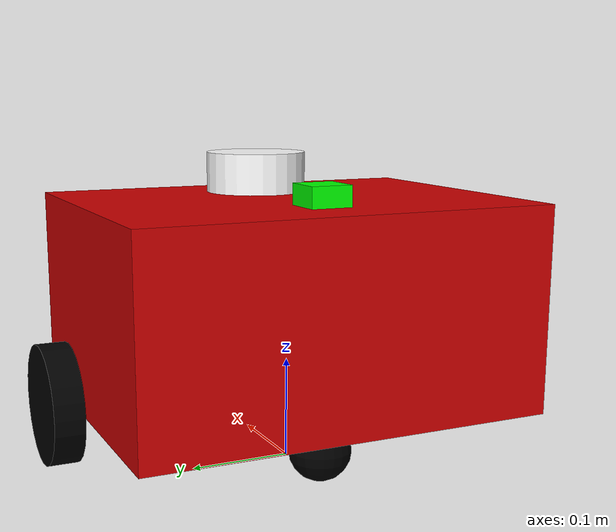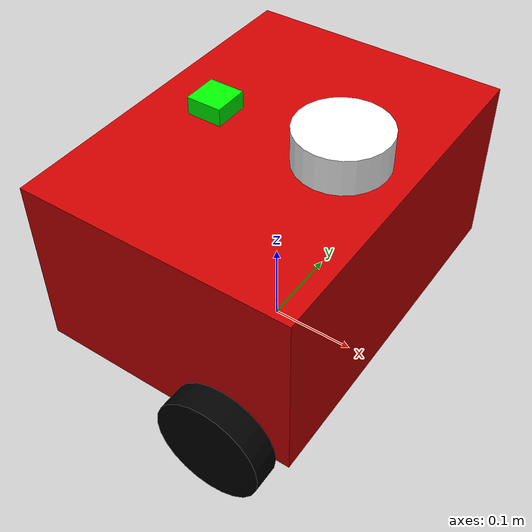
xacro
<?xml version="1.0"?>
<robot name="marrtino" xmlns:xacro="http://ros.org/wiki/xacro">

  <xacro:arg name="namespace" default="" />

  <xacro:property name="base_w" value="0.40" />
  <xacro:property name="base_l" value="0.30" />
  <xacro:property name="base_h" value="0.20" />

  <xacro:property name="wheel_r" value="0.06" />
  <xacro:property name="wheel_l" value="0.03" />

  <xacro:property name="friction" value="0.01" />
  <xacro:property name="damping" value="0.05" />
  <xacro:property name="max_effort" value="1000.0" />
  <xacro:property name="max_velocity" value="10.0" />

  <xacro:include filename="$(find marrtino_gazebo)/urdf/inertia.xacro" />

  <material name="orange"><color rgba="1.0 0.33 0.0 1.0"/></material>
  <material name="red"><color rgba="0.8 0 0 1"/></material>
  <material name="green"><color rgba="0 1 0 1"/></material>
  <material name="blue"><color rgba="0 0 1 1"/></material>
  <material name="black"><color rgba="0 0 0 1.0"/></material>
  <material name="grey"><color rgba="0.7 0.7 0.7 1.0"/></material>
  <material name="white"><color rgba="1 1 1 1.0"/></material>

  <link name="base_footprint"/>

  <link name="base_link">
    <visual>
        <geometry>
            <box size="${base_l} ${base_w} ${base_h}"/>
        </geometry>
        <origin xyz="0.0 0.0 0.0" rpy="0.0 0.0 0.0"/>
        <material name="red"/>
    </visual>
    <collision>
        <geometry>
            <box size="${base_l} ${base_w} ${base_h}"/>
        </geometry>
        <origin xyz="0.0 0.0 0.0" rpy="0.0 0.0 0.0"/>
    </collision>
    <xacro:box_inertial mass="0.5" x_dim="${base_l}" y_dim="${base_w}" z_dim="${base_h}"/>
  </link>

  <link name="left_wheel">
    <visual>
        <geometry>
            <cylinder radius="${wheel_r}" length="${wheel_l}"/>
        </geometry>
        <origin xyz="0.0 0.0 0.0" rpy="1.57 0.0 0.0"/>
        <material name="black"/>
    </visual>
    <collision>
        <geometry>
            <cylinder radius="${wheel_r}" length="${wheel_l}"/>
        </geometry>
        <origin xyz="0.0 0.0 0.0" rpy="1.57 0.0 0.0"/>
    </collision>
    <xacro:cylinder_inertial mass="0.3" radius="${wheel_r}" length="${wheel_l}"/>
  </link>

  <link name="right_wheel">
    <visual>
        <geometry>
            <cylinder radius="${wheel_r}" length="${wheel_l}"/>
        </geometry>
        <origin xyz="0.0 0.0 0.0" rpy="1.57 0.0 0.0"/>
        <material name="black"/>
    </visual>
    <collision>
        <geometry>
            <cylinder radius="${wheel_r}" length="${wheel_l}"/>
        </geometry>
        <origin xyz="0.0 0.0 0.0" rpy="1.57 0.0 0.0"/>
    </collision>
    <xacro:cylinder_inertial mass="0.3" radius="${wheel_r}" length="${wheel_l}"/>
  </link>

  <link name="caster_wheel">
    <visual>
        <geometry>
            <sphere radius="${wheel_r/2}"/>
        </geometry>
        <origin xyz="0.0 0.0 0.0" rpy="0.0 0.0 0.0"/>
        <material name="black"/>
    </visual>
    <collision>
        <geometry>
            <sphere radius="${wheel_r/2}"/>
        </geometry>
        <origin xyz="0.0 0.0 0.0" rpy="0.0 0.0 0.0"/>
    </collision>
    <xacro:sphere_inertial mass="0.1" radius="${wheel_r/2}" />
  </link>

  <link name="imu_link">
    <visual>
      <origin rpy="0 0 0" xyz="0 0 0.0"/>
      <geometry>
        <box size="0.04 0.04 0.02"/>
      </geometry>
      <material name="green"/>
    </visual>
  </link>

  <link name="lidar_link">
    <visual>
        <geometry>
            <cylinder radius="0.05" length="0.04"/>
        </geometry>
        <origin xyz="0.0 0.0 0.0" rpy="0.0 0.0 0.0"/>
        <material name="white"/>
    </visual>
  </link>

  <joint name="base_joint" type="fixed">
    <parent link="base_footprint"/>
    <child link="base_link"/>
    <origin xyz="0.0 0.0 ${base_h/2+wheel_r}" rpy="0.0 0.0 0.0"/>
  </joint>

  <joint name="left_wheel_joint" type="continuous">
    <parent link="base_link"/>
    <child link="left_wheel"/>
    <origin xyz="${base_l/4} ${base_w/2+wheel_l/2} ${-base_h/2}" rpy="0 0.0 0.0"/>
    <axis xyz="0.0 1.0 0.0"/>
    <dynamics damping="${damping}" friction="${friction}"/>
    <limit effort="${max_effort}" velocity="${max_velocity}"/>
  </joint>

  <joint name="right_wheel_joint" type="continuous">
    <parent link="base_link"/>
    <child link="right_wheel"/>
    <origin xyz="${base_l/4} ${-base_w/2-wheel_l/2} ${-base_h/2}" rpy="0 0.0 0.0"/>
    <axis xyz="0.0 1.0 0.0"/>
    <dynamics damping="${damping}" friction="${friction}"/>
    <limit effort="${max_effort}" velocity="${max_velocity}"/>
  </joint>

  <joint name="caster_wheel_joint" type="fixed">
    <parent link="base_link"/>
    <child link="caster_wheel"/>
    <origin xyz="${-base_l/4} 0.0 ${-base_h/2-wheel_r/2}" rpy="0.0 0.0 0.0"/>
  </joint>

  <joint name="imu_joint" type="fixed">
    <parent link="base_link"/>
    <child link="imu_link"/>
    <origin xyz="${-base_l/4} 0.0 ${base_h/2+0.01}" rpy="0.0 0.0 0.0"/>
  </joint>

  <joint name="base_lidar_joint" type="fixed">
    <parent link="base_link"/>
    <child link="lidar_link"/>
    <origin xyz="${base_l/4} 0.0 ${base_h/2+0.02}" rpy="0.0 0.0 0.0"/>
  </joint>

  <ros2_control name="GazeboSimSystem" type="system">
    <hardware>
      <plugin>gz_ros2_control/GazeboSimSystem</plugin>
    </hardware>
    <joint name="left_wheel_joint">
      <command_interface name="velocity">
        <param name="min">-1</param>
        <param name="max">1</param>
      </command_interface>
      <state_interface name="position"/>
      <state_interface name="velocity"/>
    </joint>
    <joint name="right_wheel_joint">
      <command_interface name="velocity">
        <param name="min">-1</param>
        <param name="max">1</param>
      </command_interface>
      <state_interface name="position"/>
      <state_interface name="velocity"/>
    </joint>
  </ros2_control>

  <gazebo>
    <!-- Joint state publisher -->
    <plugin filename="gz_ros2_control-system" name="gz_ros2_control::GazeboSimROS2ControlPlugin">
      <ros>
        <namespace>$(arg namespace)</namespace>
      </ros>
      <parameters>$(find gz_ros2_control_demos)/config/diff_drive_controller.yaml</parameters>
    </plugin>
  </gazebo>

</robot>

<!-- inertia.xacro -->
<robot xmlns:xacro="http://ros.org/wiki/xacro">

  <xacro:macro name="sphere_inertial" params="mass radius">
    <inertial>
      <origin xyz="0 0 0" rpy="0 0 0"/> <mass value="${mass}"/>
      <inertia
        ixx="${(2/5) * mass * (radius*radius)}"
        ixy="0.0"
        ixz="0.0"
        iyy="${(2/5) * mass * (radius*radius)}"
        iyz="0.0"
        izz="${(2/5) * mass * (radius*radius)}"
      />
    </inertial>
  </xacro:macro>

  <xacro:macro name="sphere_inertial_roll" params="mass radius roll">
    <inertial>
      <origin xyz="0 0 0" rpy="${roll} 0 0"/> <mass value="${mass}"/>
      <inertia
        ixx="${(2/5) * mass * (radius*radius)}"
        ixy="0.0"
        ixz="0.0"
        iyy="${(2/5) * mass * (radius*radius)}"
        iyz="0.0"
        izz="${(2/5) * mass * (radius*radius)}"
      />
    </inertial>
  </xacro:macro>

  <xacro:macro name="cylinder_inertial" params="mass radius length">
    <inertial>
      <origin xyz="0 0 0" rpy="0 0 0"/>
      <mass value="${mass}"/>
      <inertia
        ixx="${(1/12) * mass * (3*radius*radius + length*length)}"
        ixy="0.0"
        ixz="0.0"
        iyy="${(1/12) * mass * (3*radius*radius + length*length)}"
        iyz="0.0"
        izz="${(1/2) * mass * (radius*radius)}"
      />
    </inertial>
  </xacro:macro>

  <xacro:macro name="cylinder_inertial_roll" params="mass radius length roll">
    <inertial>
      <origin xyz="0 0 0" rpy="${roll} 0 0"/>
      <mass value="${mass}"/>
      <inertia
        ixx="${(1/12) * mass * (3*radius*radius + length*length)}"
        ixy="0.0"
        ixz="0.0"
        iyy="${(1/12) * mass * (3*radius*radius + length*length)}"
        iyz="0.0"
        izz="${(1/2) * mass * (radius*radius)}"
      />
    </inertial>
  </xacro:macro>

  <xacro:macro name="box_inertial" params="mass x_dim y_dim z_dim">
    <inertial>
      <origin xyz="0 0 0" rpy="0 0 0"/>
      <mass value="${mass}"/>
      <inertia
        ixx="${(1/12) * mass * (y_dim*y_dim + z_dim*z_dim)}"
        ixy="0.0"
        ixz="0.0"
        iyy="${(1/12) * mass * (x_dim*x_dim + z_dim*z_dim)}"
        iyz="0.0"
        izz="${(1/12) * mass * (x_dim*x_dim + y_dim*y_dim)}"
      />
    </inertial>
  </xacro:macro>

</robot>
